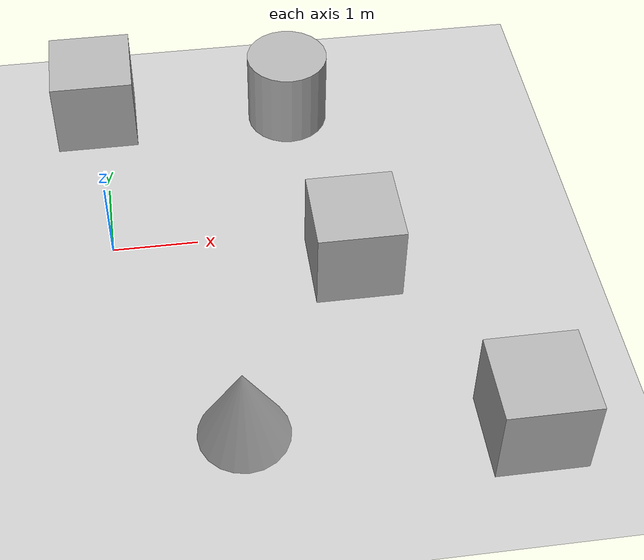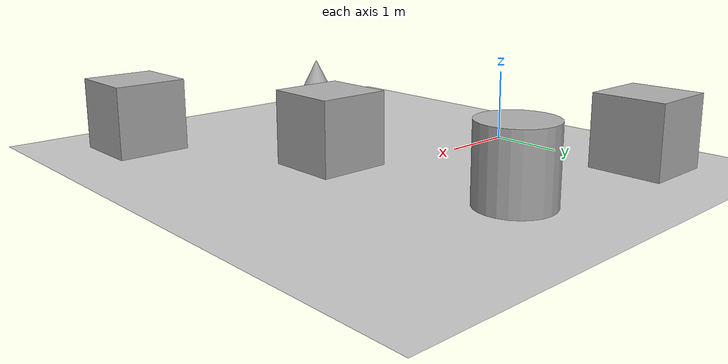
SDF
<sdf version='1.10'>
  <world name='empty'>
    <physics name='1ms' type='ignored'>
      <max_step_size>0.001</max_step_size>
      <real_time_factor>1</real_time_factor>
      <real_time_update_rate>1000</real_time_update_rate>
    </physics>
    <plugin name='gz::sim::systems::Physics' filename='gz-sim-physics-system'/>
    <plugin name='gz::sim::systems::UserCommands' filename='gz-sim-user-commands-system'/>
    <plugin name='gz::sim::systems::SceneBroadcaster' filename='gz-sim-scene-broadcaster-system'/>
    <plugin name='gz::sim::systems::Contact' filename='gz-sim-contact-system'/>
    <gravity>0 0 -9.8000000000000007</gravity>
    <magnetic_field>5.5644999999999998e-06 2.2875799999999999e-05 -4.2388400000000002e-05</magnetic_field>
    <atmosphere type='adiabatic'/>
    <scene>
      <ambient>0.400000006 0.400000006 0.400000006 1</ambient>
      <background>0.699999988 0.699999988 0.699999988 1</background>
      <shadows>true</shadows>
    </scene>
    <model name='ground_plane'>
      <static>true</static>
      <link name='link'>
        <collision name='collision'>
          <geometry>
            <plane>
              <normal>0 0 1</normal>
              <size>100 100</size>
            </plane>
          </geometry>
          <surface>
            <friction>
              <ode/>
            </friction>
            <bounce/>
            <contact/>
          </surface>
        </collision>
        <visual name='visual'>
          <geometry>
            <plane>
              <normal>0 0 1</normal>
              <size>100 100</size>
            </plane>
          </geometry>
          <material>
            <ambient>0.800000012 0.800000012 0.800000012 1</ambient>
            <diffuse>0.800000012 0.800000012 0.800000012 1</diffuse>
            <specular>0.800000012 0.800000012 0.800000012 1</specular>
          </material>
        </visual>
        <pose>0 0 0 0 0 0</pose>
        <inertial>
          <pose>0 0 0 0 0 0</pose>
          <mass>1</mass>
          <inertia>
            <ixx>1</ixx>
            <ixy>0</ixy>
            <ixz>0</ixz>
            <iyy>1</iyy>
            <iyz>0</iyz>
            <izz>1</izz>
          </inertia>
        </inertial>
        <enable_wind>false</enable_wind>
      </link>
      <pose>0 0 0 0 0 0</pose>
      <self_collide>false</self_collide>
    </model>
    <model name='box'>
      <pose>2.7692635082449373 -0.61772773422798877 0.49999999990199806 6.2287739151293738e-22 9.3279666454713669e-22 -3.6315533669320137e-22</pose>
      <link name='box_link'>
        <inertial>
          <inertia>
            <ixx>0.16666</ixx>
            <ixy>0</ixy>
            <ixz>0</ixz>
            <iyy>0.16666</iyy>
            <iyz>0</iyz>
            <izz>0.16666</izz>
          </inertia>
          <mass>1</mass>
          <pose>0 0 0 0 0 0</pose>
        </inertial>
        <collision name='box_collision'>
          <geometry>
            <box>
              <size>1 1 1</size>
            </box>
          </geometry>
          <surface>
            <friction>
              <ode/>
            </friction>
            <bounce/>
            <contact/>
          </surface>
        </collision>
        <visual name='box_visual'>
          <geometry>
            <box>
              <size>1 1 1</size>
            </box>
          </geometry>
          <material>
            <ambient>0.300000012 0.300000012 0.300000012 1</ambient>
            <diffuse>0.699999988 0.699999988 0.699999988 1</diffuse>
            <specular>1 1 1 1</specular>
          </material>
        </visual>
        <pose>0 0 0 0 0 0</pose>
        <enable_wind>false</enable_wind>
      </link>
      <static>false</static>
      <self_collide>false</self_collide>
    </model>
    <model name='cylinder'>
      <pose>2.3449103168270389 2.099129932310861 0.49999942638036005 -4.3951762125046134e-20 4.7255644340837431e-19 -2.3737181788459127e-21</pose>
      <link name='cylinder_link'>
        <inertial>
          <inertia>
            <ixx>0.14580000000000001</ixx>
            <ixy>0</ixy>
            <ixz>0</ixz>
            <iyy>0.14580000000000001</iyy>
            <iyz>0</iyz>
            <izz>0.125</izz>
          </inertia>
          <mass>1</mass>
          <pose>0 0 0 0 0 0</pose>
        </inertial>
        <collision name='cylinder_collision'>
          <geometry>
            <cylinder>
              <radius>0.5</radius>
              <length>1</length>
            </cylinder>
          </geometry>
          <surface>
            <friction>
              <ode/>
            </friction>
            <bounce/>
            <contact/>
          </surface>
        </collision>
        <visual name='cylinder_visual'>
          <geometry>
            <cylinder>
              <radius>0.5</radius>
              <length>1</length>
            </cylinder>
          </geometry>
          <material>
            <ambient>0.300000012 0.300000012 0.300000012 1</ambient>
            <diffuse>0.699999988 0.699999988 0.699999988 1</diffuse>
            <specular>1 1 1 1</specular>
          </material>
        </visual>
        <pose>0 0 0 0 0 0</pose>
        <enable_wind>false</enable_wind>
      </link>
      <static>false</static>
      <self_collide>false</self_collide>
    </model>
    <model name='cone'>
      <pose>1.2575491620980332 -2.7945340870916588 0.49999999993296756 5.254112337112289e-17 -7.7132841035481852e-10 1.1756787404075212e-22</pose>
      <link name='cone_link'>
        <inertial>
          <inertia>
            <ixx>0.074999999999999997</ixx>
            <ixy>0</ixy>
            <ixz>0</ixz>
            <iyy>0.074999999999999997</iyy>
            <iyz>0</iyz>
            <izz>0.074999999999999997</izz>
          </inertia>
          <mass>1</mass>
          <pose>0 0 0 0 0 0</pose>
        </inertial>
        <collision name='cone_collision'>
          <geometry>
            <cone>
              <radius>0.5</radius>
              <length>1</length>
            </cone>
          </geometry>
          <surface>
            <friction>
              <ode/>
            </friction>
            <bounce/>
            <contact/>
          </surface>
        </collision>
        <visual name='cone_visual'>
          <geometry>
            <cone>
              <radius>0.5</radius>
              <length>1</length>
            </cone>
          </geometry>
          <material>
            <ambient>0.300000012 0.300000012 0.300000012 1</ambient>
            <diffuse>0.699999988 0.699999988 0.699999988 1</diffuse>
            <specular>1 1 1 1</specular>
          </material>
        </visual>
        <pose>0 0 0 0 0 0</pose>
        <enable_wind>false</enable_wind>
      </link>
      <static>false</static>
      <self_collide>false</self_collide>
    </model>
    <model name='box_0'>
      <pose>-0.11047304803414759 2.2986742316965385 0.49999999990199806 6.2287739151293738e-22 9.3279666454713669e-22 -3.6315533669320137e-22</pose>
      <link name='box_link'>
        <inertial>
          <inertia>
            <ixx>0.16666</ixx>
            <ixy>0</ixy>
            <ixz>0</ixz>
            <iyy>0.16666</iyy>
            <iyz>0</iyz>
            <izz>0.16666</izz>
          </inertia>
          <mass>1</mass>
          <pose>0 0 0 0 0 0</pose>
        </inertial>
        <collision name='box_collision'>
          <geometry>
            <box>
              <size>1 1 1</size>
            </box>
          </geometry>
          <surface>
            <friction>
              <ode/>
            </friction>
            <bounce/>
            <contact/>
          </surface>
        </collision>
        <visual name='box_visual'>
          <geometry>
            <box>
              <size>1 1 1</size>
            </box>
          </geometry>
          <material>
            <ambient>0.300000012 0.300000012 0.300000012 1</ambient>
            <diffuse>0.699999988 0.699999988 0.699999988 1</diffuse>
            <specular>1 1 1 1</specular>
          </material>
        </visual>
        <pose>0 0 0 0 0 0</pose>
        <enable_wind>false</enable_wind>
      </link>
      <static>false</static>
      <self_collide>false</self_collide>
    </model>
    <model name='box_1'>
      <pose>4.2369920363949714 -3.1640542609500999 0.49999999990199806 6.2287739151293738e-22 9.3279666454713669e-22 -3.6315533669320137e-22</pose>
      <link name='box_link'>
        <inertial>
          <inertia>
            <ixx>0.16666</ixx>
            <ixy>0</ixy>
            <ixz>0</ixz>
            <iyy>0.16666</iyy>
            <iyz>0</iyz>
            <izz>0.16666</izz>
          </inertia>
          <mass>1</mass>
          <pose>0 0 0 0 0 0</pose>
        </inertial>
        <collision name='box_collision'>
          <geometry>
            <box>
              <size>1 1 1</size>
            </box>
          </geometry>
          <surface>
            <friction>
              <ode/>
            </friction>
            <bounce/>
            <contact/>
          </surface>
        </collision>
        <visual name='box_visual'>
          <geometry>
            <box>
              <size>1 1 1</size>
            </box>
          </geometry>
          <material>
            <ambient>0.300000012 0.300000012 0.300000012 1</ambient>
            <diffuse>0.699999988 0.699999988 0.699999988 1</diffuse>
            <specular>1 1 1 1</specular>
          </material>
        </visual>
        <pose>0 0 0 0 0 0</pose>
        <enable_wind>false</enable_wind>
      </link>
      <static>false</static>
      <self_collide>false</self_collide>
    </model>
    <light name='sun' type='directional'>
      <pose>0 0 10 0 0 0</pose>
      <cast_shadows>true</cast_shadows>
      <intensity>1</intensity>
      <direction>-0.5 0.10000000000000001 -0.90000000000000002</direction>
      <diffuse>0.800000012 0.800000012 0.800000012 1</diffuse>
      <specular>0.200000003 0.200000003 0.200000003 1</specular>
      <attenuation>
        <range>1000</range>
        <linear>0.01</linear>
        <constant>0.90000000000000002</constant>
        <quadratic>0.001</quadratic>
      </attenuation>
      <spot>
        <inner_angle>0</inner_angle>
        <outer_angle>0</outer_angle>
        <falloff>0</falloff>
      </spot>
    </light>
  </world>
</sdf>
